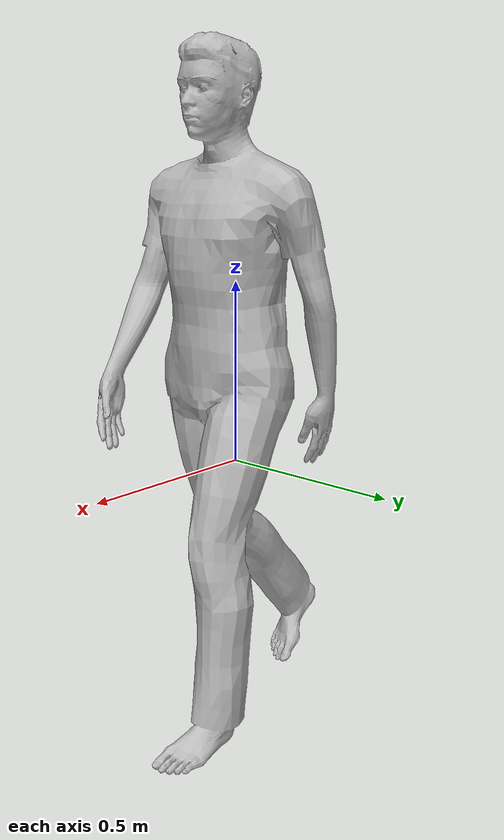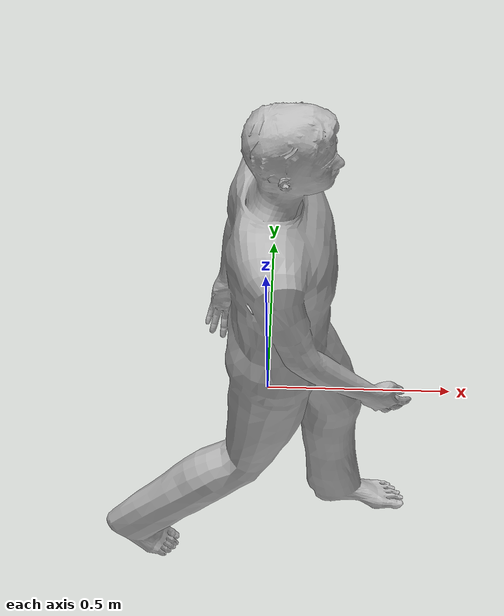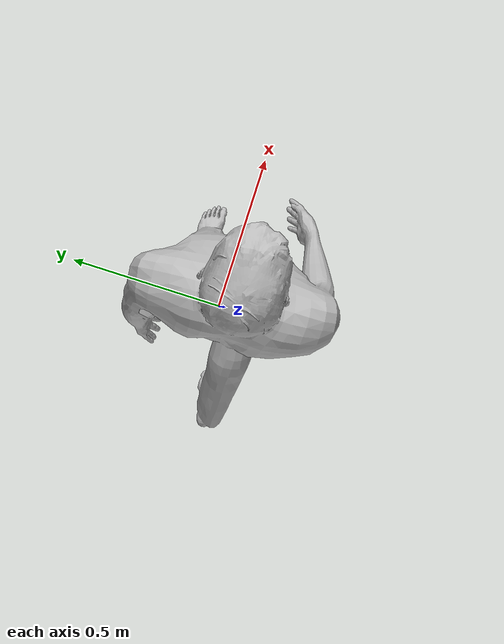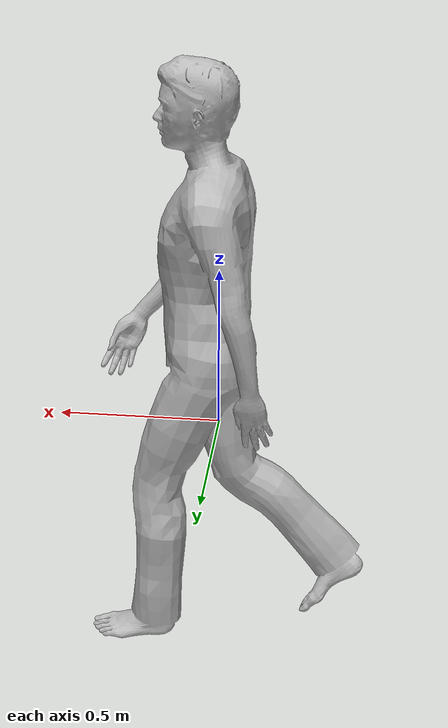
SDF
<?xml version="1.0" ?>
<sdf version="1.5">
  <model name="person_walking">
    <link name="link">
      <pose>0 0 -0.75 0 0 1.57</pose>
      <inertial>
        <pose>0 0 0.95 0 0 0</pose>
        <mass>50.0</mass>
        <inertia>
          <ixx>27.82</ixx>
          <ixy>0</ixy>
          <ixz>0</ixz>
          <iyy>24.88</iyy>
          <iyz>0</iyz>
          <izz>4.57</izz>
        </inertia>
      </inertial>

      <collision name="bottom">
        <pose>0 0 0.01 0 0 0</pose>
        <geometry>
          <box>
            <size>0.35 0.75 0.01</size>
          </box>
        </geometry>
      </collision>

      <visual name="visual">
        <pose>0 0 -0.02 0 0 0</pose>
        <geometry>
          <mesh>
            <uri>model://person_walking/meshes/walking.dae</uri>
          </mesh>
        </geometry>
      </visual>
    </link>
  </model>
</sdf>
